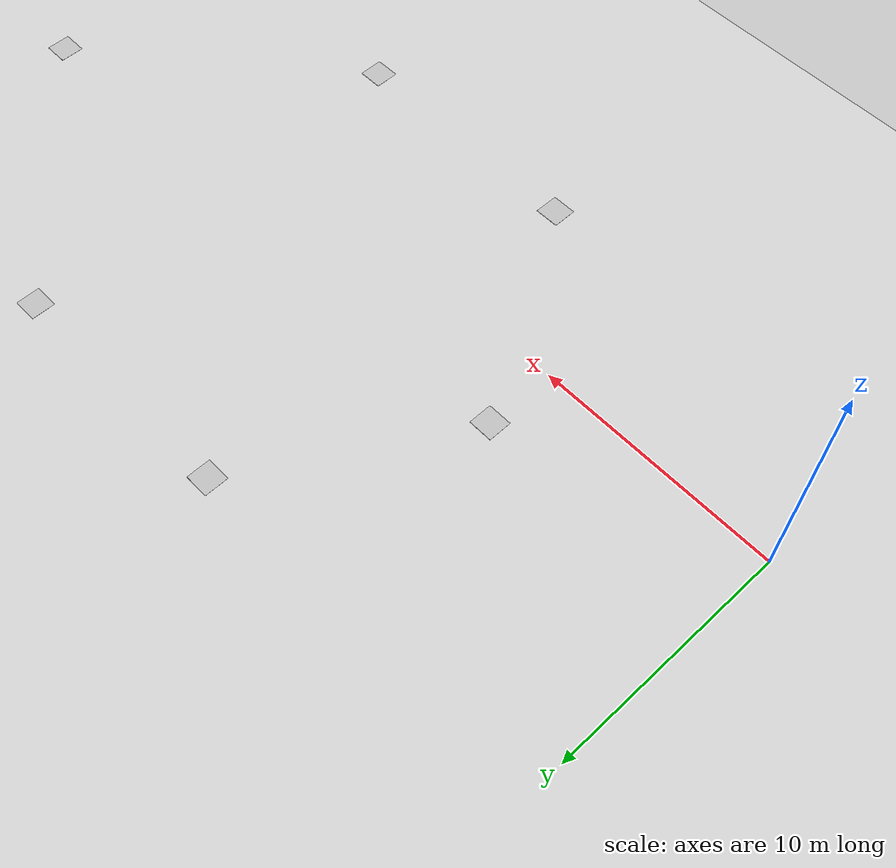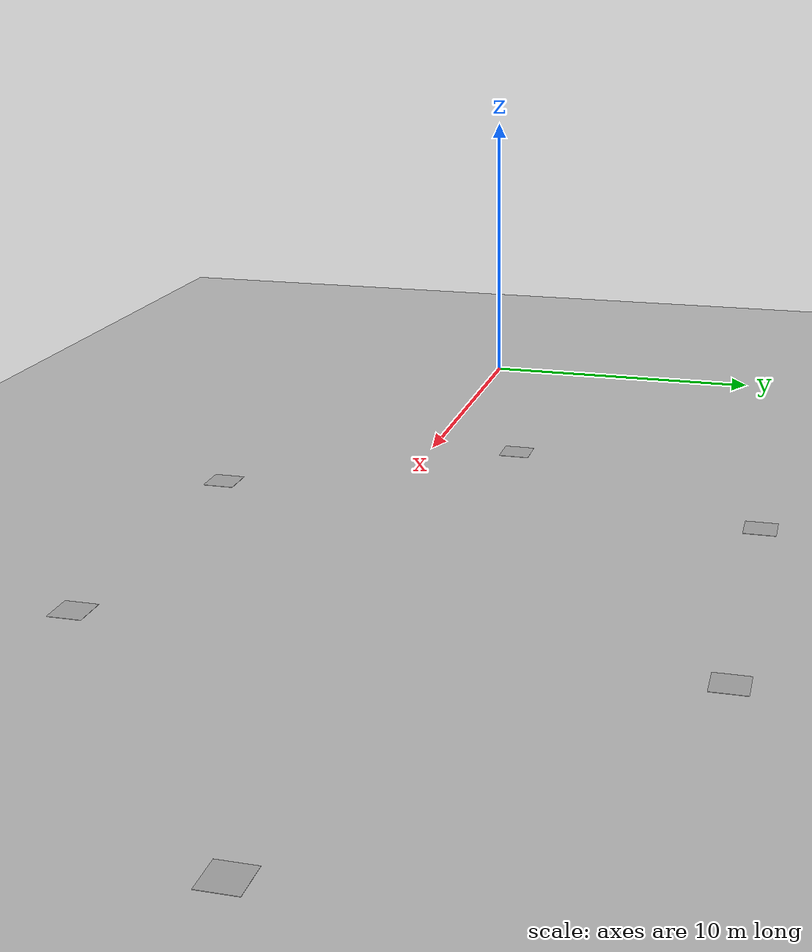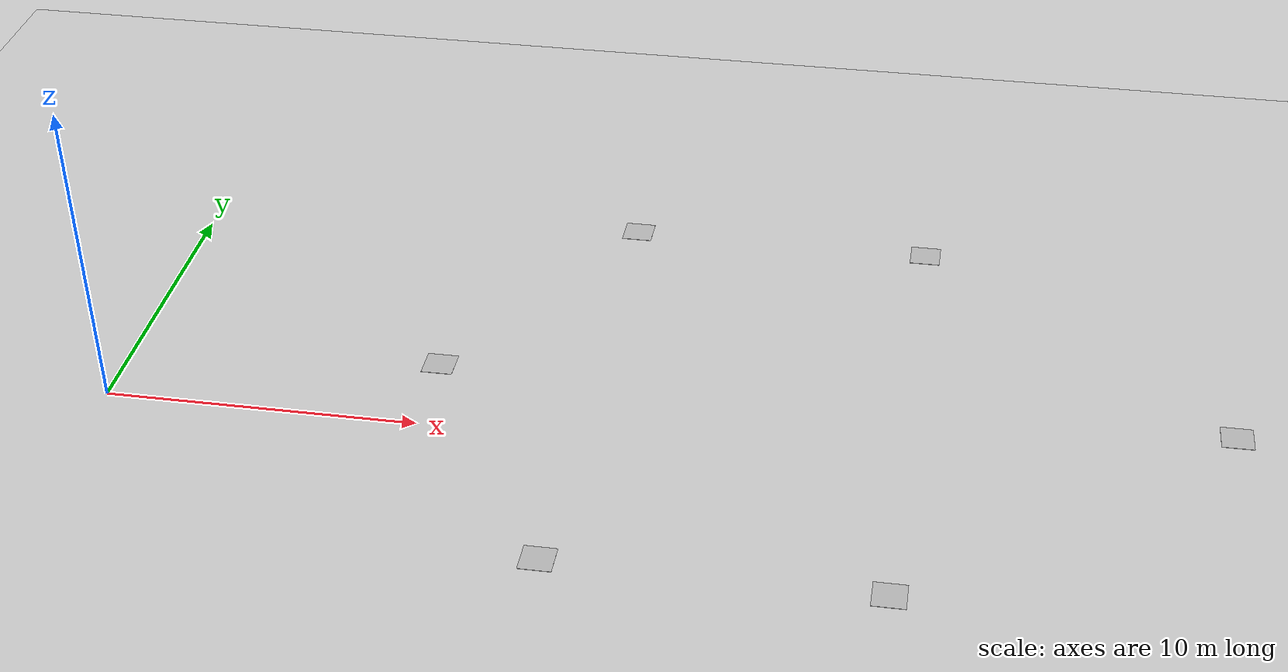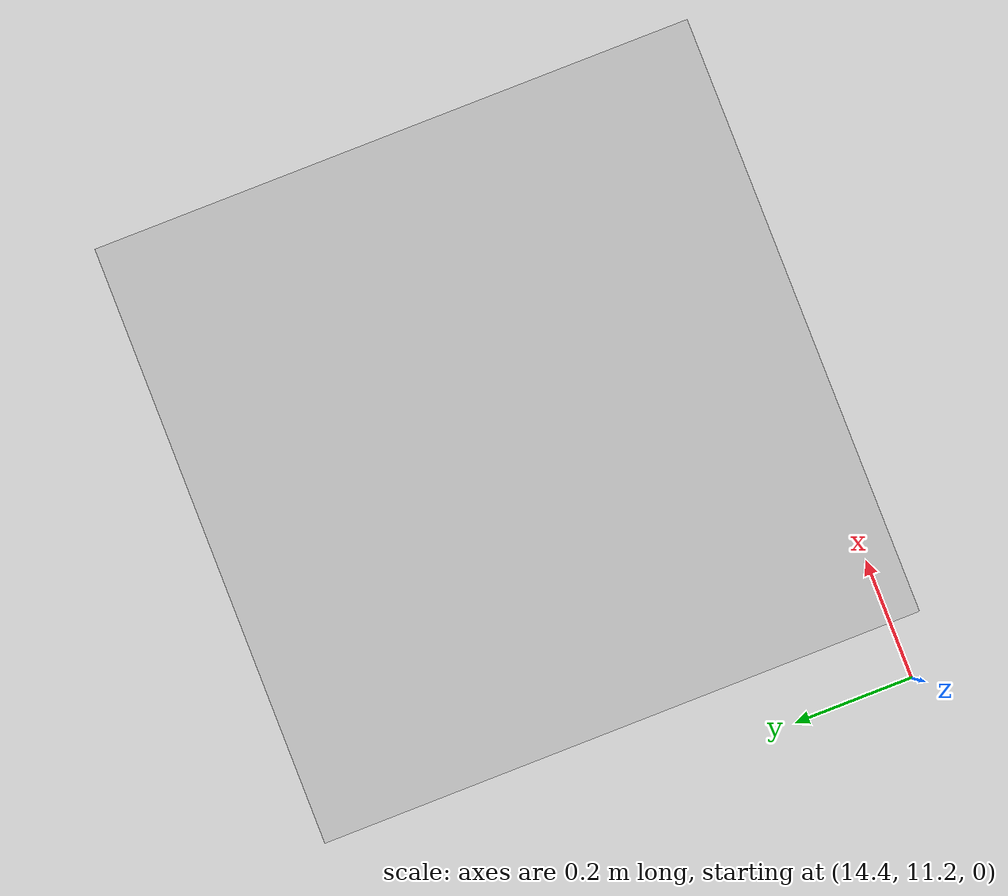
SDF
<sdf version="1.6">
 <world name="sancak_world">
  <scene><ambient>0.6 0.6 0.6 1</ambient><background>0.4 0.4 0.4 1</background><shadows>false</shadows></scene>
  <include><uri>model://sun</uri></include>
  <include><uri>model://ground_plane</uri></include>
  <model name="qr1"><include><uri>model://qr_plaka_1</uri></include><pose>35 3 0.1 0 0 0</pose></model>
  <model name="qr2"><include><uri>model://qr_plaka_2</uri></include><pose>25 11.66 0.1 0 0 0</pose></model>
  <model name="qr3"><include><uri>model://qr_plaka_3</uri></include><pose>15 11.66 0.1 0 0 0</pose></model>
  <model name="qr4"><include><uri>model://qr_plaka_4</uri></include><pose>10 3 0.1 0 0 0</pose></model>
  <model name="qr5"><include><uri>model://qr_plaka_5</uri></include><pose>15 -5.66 0.1 0 0 0</pose></model>
  <model name="qr6"><include><uri>model://qr_plaka_6</uri></include><pose>25 -5.66 0.1 0 0 0</pose></model>
 </world>
</sdf>

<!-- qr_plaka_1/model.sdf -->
<sdf version="1.6">
  <model name="qr_plaka_1">
    <static>true</static>
    <link name="link">
      <visual name="visual">
        <geometry>
          <box><size>1.0 1.0 0.01</size></box>
        </geometry>
        <material>
          <script>
            <uri>model://qr_plaka_1/materials/scripts</uri>
            <uri>model://qr_plaka_1/materials/textures</uri>
            <name>qr_plaka_1/QRMaterial</name>
          </script>
        </material>
      </visual>
      <collision name="collision">
        <geometry>
          <box><size>1.0 1.0 0.01</size></box>
        </geometry>
      </collision>
    </link>
  </model>
</sdf>

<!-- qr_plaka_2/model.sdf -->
<sdf version="1.6">
  <model name="qr_plaka_2">
    <static>true</static>
    <link name="link">
      <visual name="visual">
        <geometry>
          <box><size>1.0 1.0 0.01</size></box>
        </geometry>
        <material>
          <script>
            <uri>model://qr_plaka_2/materials/scripts</uri>
            <uri>model://qr_plaka_2/materials/textures</uri>
            <name>qr_plaka_2/QRMaterial</name>
          </script>
        </material>
      </visual>
      <collision name="collision">
        <geometry>
          <box><size>1.0 1.0 0.01</size></box>
        </geometry>
      </collision>
    </link>
  </model>
</sdf>

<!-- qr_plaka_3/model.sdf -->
<sdf version="1.6">
  <model name="qr_plaka_3">
    <static>true</static>
    <link name="link">
      <visual name="visual">
        <geometry>
          <box><size>1.0 1.0 0.01</size></box>
        </geometry>
        <material>
          <script>
            <uri>model://qr_plaka_3/materials/scripts</uri>
            <uri>model://qr_plaka_3/materials/textures</uri>
            <name>qr_plaka_3/QRMaterial</name>
          </script>
        </material>
      </visual>
      <collision name="collision">
        <geometry>
          <box><size>1.0 1.0 0.01</size></box>
        </geometry>
      </collision>
    </link>
  </model>
</sdf>

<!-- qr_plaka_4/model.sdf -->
<sdf version="1.6">
  <model name="qr_plaka_4">
    <static>true</static>
    <link name="link">
      <visual name="visual">
        <geometry>
          <box><size>1.0 1.0 0.01</size></box>
        </geometry>
        <material>
          <script>
            <uri>model://qr_plaka_4/materials/scripts</uri>
            <uri>model://qr_plaka_4/materials/textures</uri>
            <name>qr_plaka_4/QRMaterial</name>
          </script>
        </material>
      </visual>
      <collision name="collision">
        <geometry>
          <box><size>1.0 1.0 0.01</size></box>
        </geometry>
      </collision>
    </link>
  </model>
</sdf>

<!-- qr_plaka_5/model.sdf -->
<sdf version="1.6">
  <model name="qr_plaka_5">
    <static>true</static>
    <link name="link">
      <visual name="visual">
        <geometry>
          <box><size>1.0 1.0 0.01</size></box>
        </geometry>
        <material>
          <script>
            <uri>model://qr_plaka_5/materials/scripts</uri>
            <uri>model://qr_plaka_5/materials/textures</uri>
            <name>qr_plaka_5/QRMaterial</name>
          </script>
        </material>
      </visual>
      <collision name="collision">
        <geometry>
          <box><size>1.0 1.0 0.01</size></box>
        </geometry>
      </collision>
    </link>
  </model>
</sdf>

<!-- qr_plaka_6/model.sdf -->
<sdf version="1.6">
  <model name="qr_plaka_6">
    <static>true</static>
    <link name="link">
      <visual name="visual">
        <geometry>
          <box><size>1.0 1.0 0.01</size></box>
        </geometry>
        <material>
          <script>
            <uri>model://qr_plaka_6/materials/scripts</uri>
            <uri>model://qr_plaka_6/materials/textures</uri>
            <name>qr_plaka_6/QRMaterial</name>
          </script>
        </material>
      </visual>
      <collision name="collision">
        <geometry>
          <box><size>1.0 1.0 0.01</size></box>
        </geometry>
      </collision>
    </link>
  </model>
</sdf>
